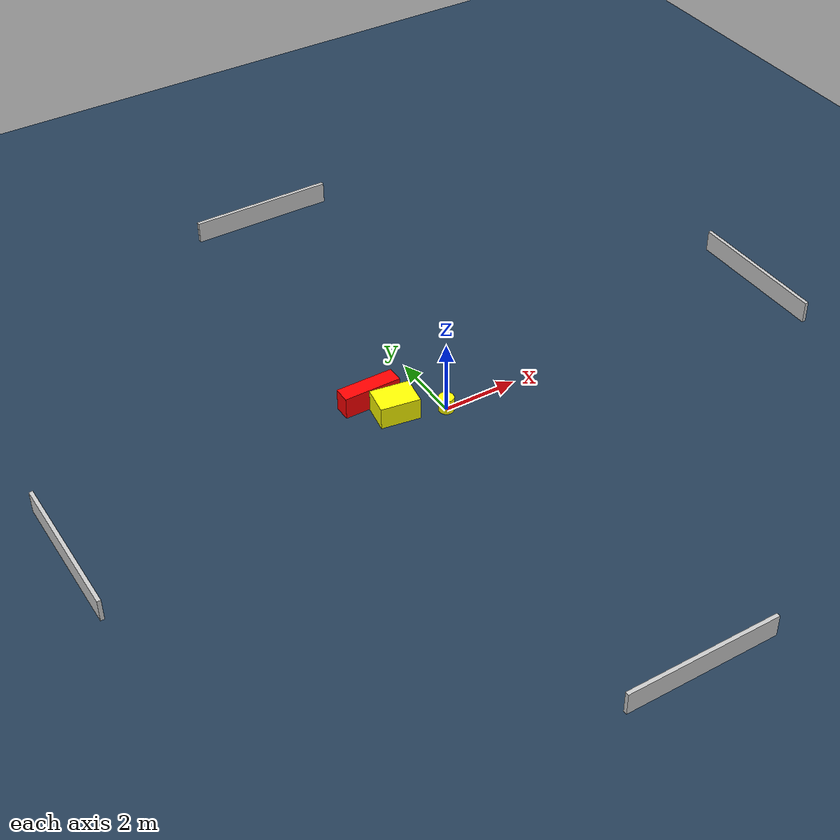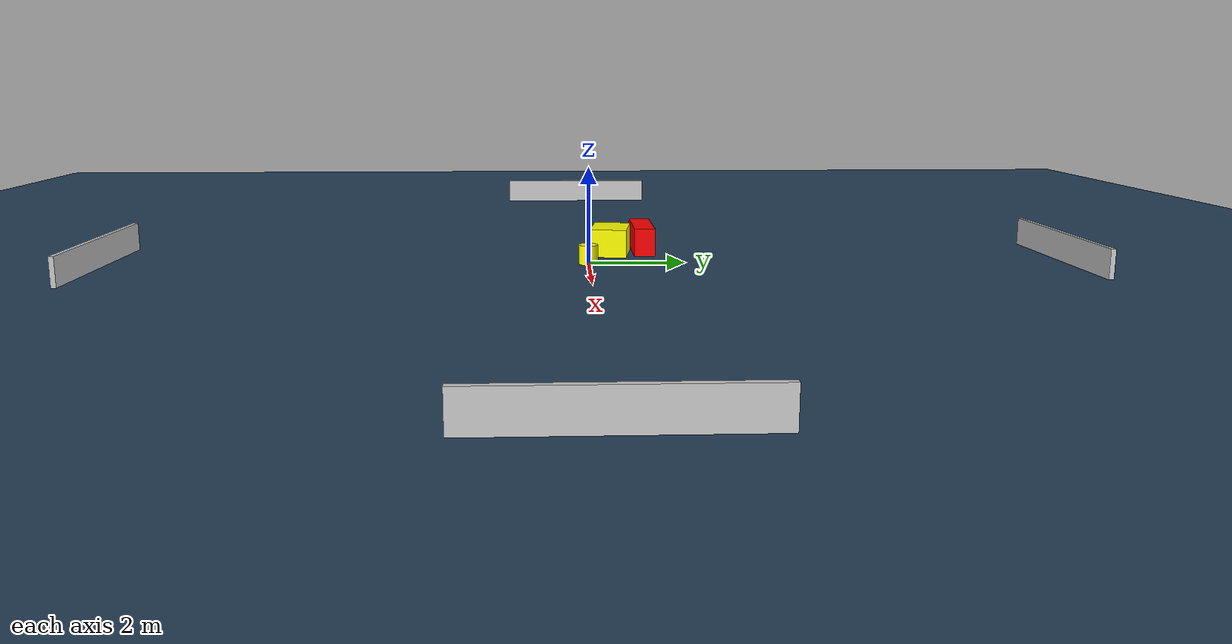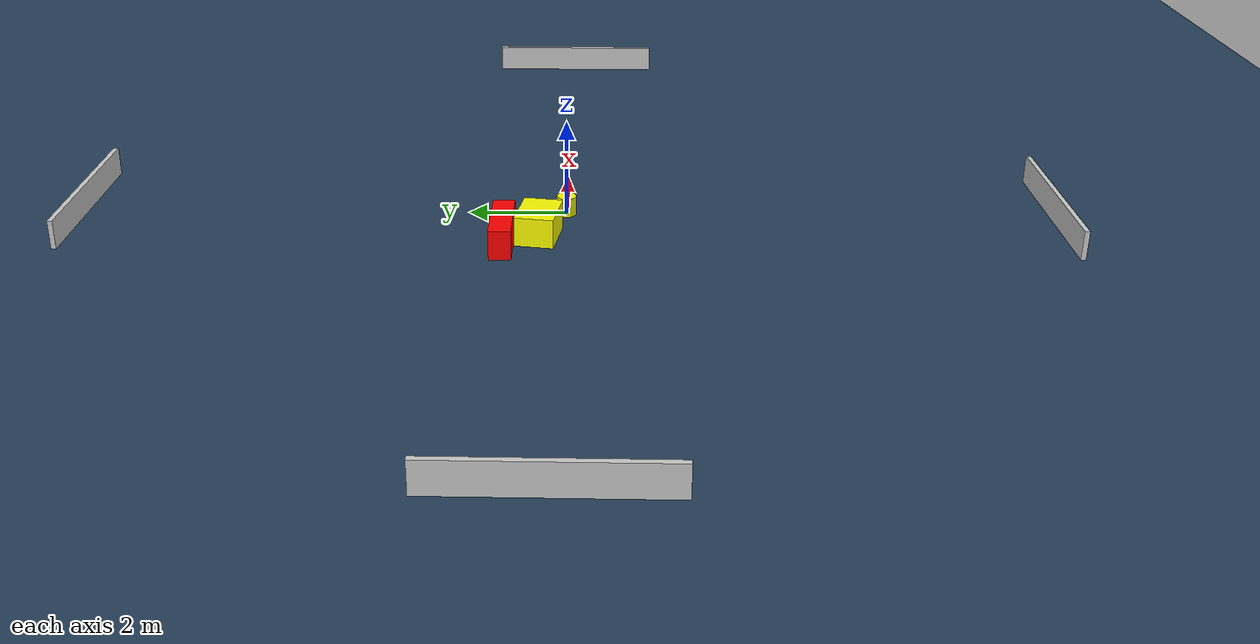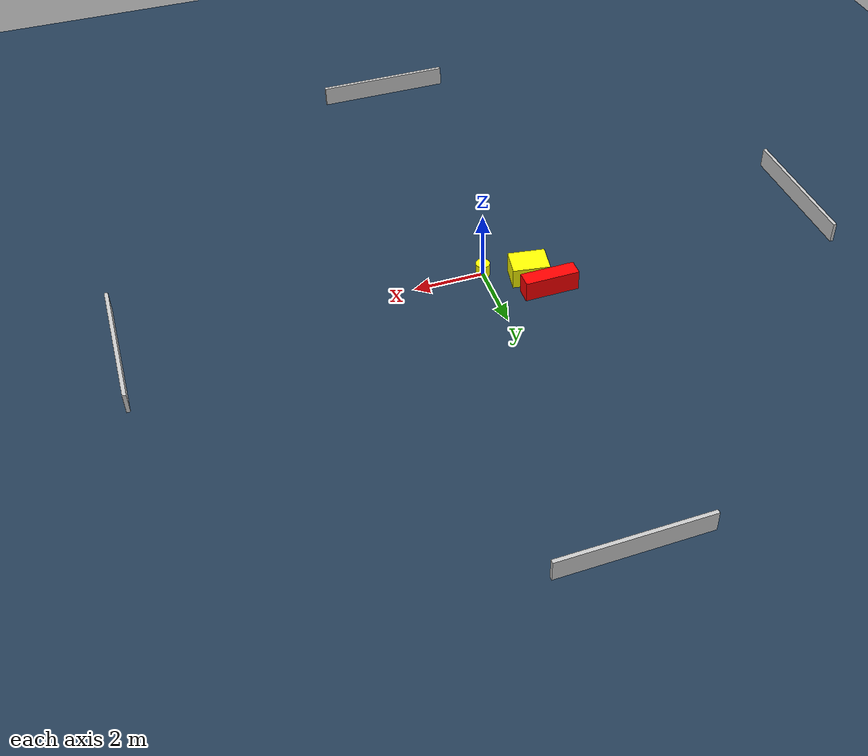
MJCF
<?xml version="1.0" ?>
<mujoco model="generated_environment">
  <option timestep="0.01" integrator="RK4" cone="elliptic"/>
  <default>
    <geom density="1"/>
  </default>
  <asset>
    <texture builtin="gradient" height="3072" name="skybox" rgb1="0.3 0.5 0.7" rgb2="0 0 0" type="skybox" width="512"/>
    <texture builtin="checker" height="300" name="groundplane" rgb1="0.2 0.3 0.4" rgb2="0.1 0.2 0.3" type="2d" width="300"/>
    <material name="groundplane" reflectance="0.2" texrepeat="5 5" texture="groundplane"/>
  </asset>
  <worldbody>
    <light dir="0 0 -1" directional="true" pos="0 0 1.5"/>
    <geom condim="3" friction="0.5 0.005 0.001" material="groundplane" name="floor" pos="0 0 0" size="0 0 0.05" type="plane"/>
    <body name="walls">
      <geom name="wall_1" condim="4" pos="-10.0 0.0 0.3" rgba="0.800000011920929 0.800000011920929 0.800000011920929 1.0" size="0.05 2.0 0.3" type="box"/>
      <geom name="wall_2" condim="4" pos="10.0 0.0 0.3" rgba="0.800000011920929 0.800000011920929 0.800000011920929 1.0" size="0.05 2.0 0.3" type="box"/>
      <geom name="wall_3" condim="4" pos="0.0 -10.0 0.3" rgba="0.800000011920929 0.800000011920929 0.800000011920929 1.0" size="2.0 0.05 0.3" type="box"/>
      <geom name="wall_4" condim="4" pos="0.0 10.0 0.3" rgba="0.800000011920929 0.800000011920929 0.800000011920929 1.0" size="2.0 0.05 0.3" type="box"/>
    </body>
    <body name="robot">
      <joint name="joint_x" type="slide" pos="0 0 0" axis="1 0 0"/>
      <joint name="joint_y" type="slide" pos="0 0 0" axis="0 1 0"/>
      <geom name="robot" type="cylinder" pos="0.0 0.0 0.2" size="0.2 0.2 0.0" mass="5.0" friction="1.0 0.005 0.0001" condim="4" rgba="1.0 1.0 0.0 1.0"/>
    </body>
    <body name="obstacle_1_movable">
      <geom name="obstacle_1_movable" condim="4" pos="-1.1643187601772547 0.5252953844450928 0.3" euler="0 0 81.1045922556213" friction="0.0 0.005 0.001" rgba="1.0 1.0 0.0 1.0" size="0.391758612978395 0.5239010725225661 0.3" type="box" mass="0.1"/>
      <joint type="free"/>
    </body>
    <body name="obstacle_2_static">
      <geom name="obstacle_2_static" condim="4" pos="-1.5057828850651993 1.237309948259203 0.3" euler="0 0 180.16161073530458" friction="0.0 0.005 0.001" rgba="1.0 0.0 0.0 1.0" size="0.7727546719297809 0.22212456927112897 0.3" type="box"/>
    </body>
  </worldbody>
  <actuator>
    <motor name="actuator_x" joint="joint_x" gear="1" ctrlrange="-1 1"/>
    <motor name="actuator_y" joint="joint_y" gear="1" ctrlrange="-1 1"/>
  </actuator>
</mujoco>
